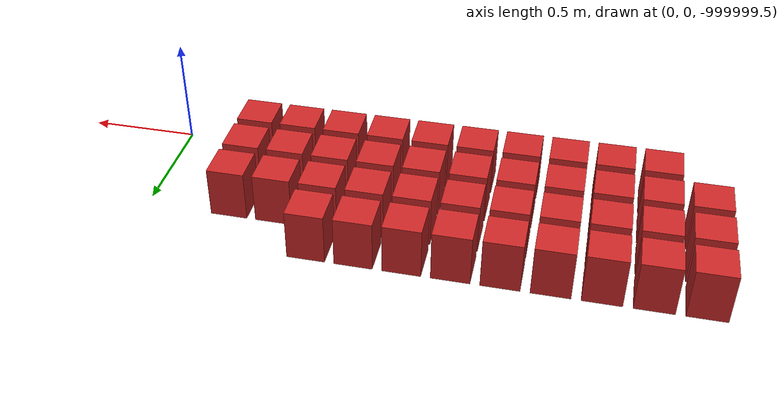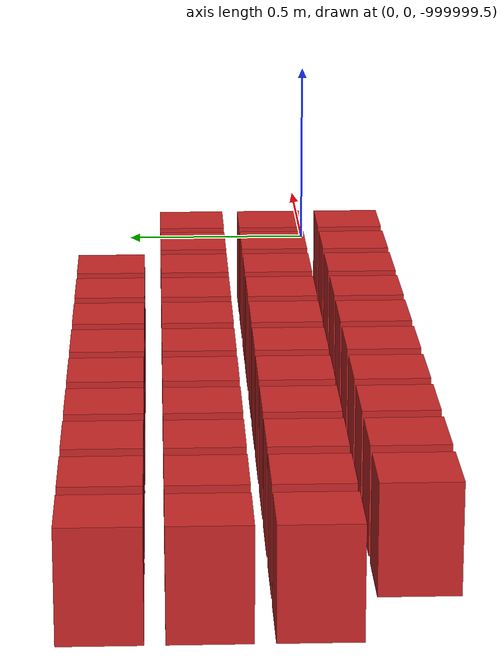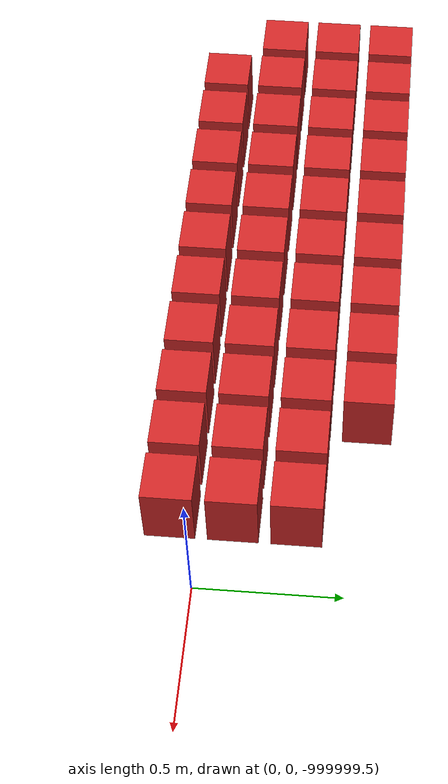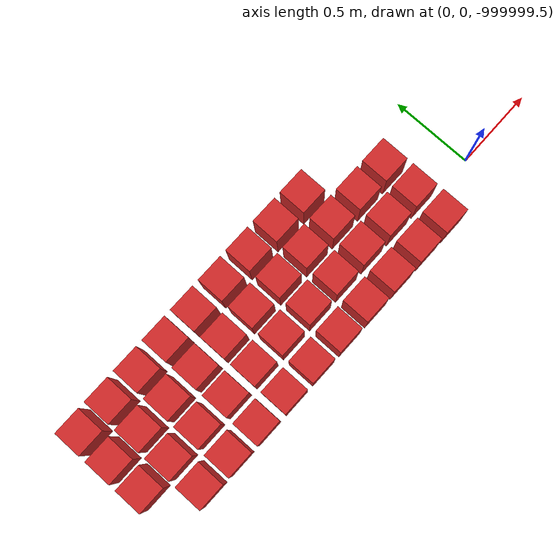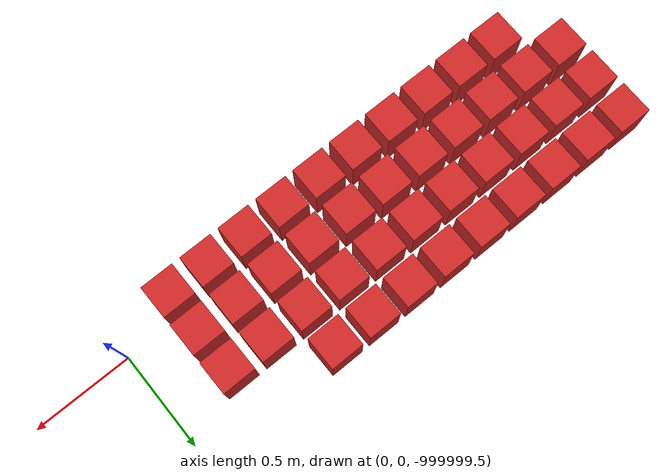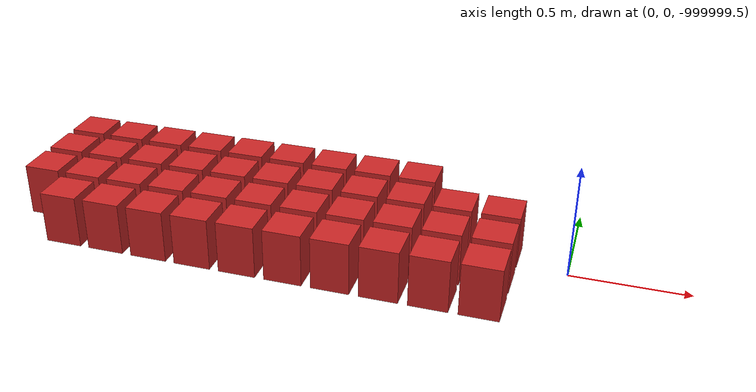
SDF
<sdf version="1.7">
 <world name="default">
  <model name="ground_plane">
   <static>1</static>
   <link name="link">
    <collision name="collision">
     <geometry><plane><normal>0 0 1</normal><size>100 100</size></plane></geometry>
     <surface>
      <contact><collide_bitmask>65535</collide_bitmask></contact>
      <friction><ode><mu>100</mu><mu2>50</mu2></ode></friction>
     </surface>
    </collision>
    <visual name="visual">
     <cast_shadows>0</cast_shadows>
     <geometry><plane><normal>0 0 1</normal><size>100 100</size></plane></geometry>
     <material>
      <script><uri>file://media/materials/scripts/gazebo.material</uri><name>Gazebo/Grey</name></script>
     </material>
    </visual>
   </link>
  </model>
  <model name="wall_254">
   <link name="link">
    <pose>0 0 0.5 0 -0 0</pose>
    <inertial>
     <mass>0.5167</mass>
     <inertia>
      <ixx>0.000861167</ixx>
      <ixy>0</ixy>
      <ixz>0</ixz>
      <iyy>0.000861167</iyy>
      <iyz>0</iyz>
      <izz>0.000861167</izz>
     </inertia>
    </inertial>
    <collision name="collision">
     <geometry><box><size>0.21 0.21 0.25</size></box></geometry>
     <surface>
      <contact>
       <poissons_ratio>0.347</poissons_ratio>
       <elastic_modulus>8.8e+09</elastic_modulus>
       <ode><kp>100000</kp><kd>100</kd><max_vel>100</max_vel><min_depth>0.001</min_depth></ode>
      </contact>
      <friction>
       <torsional>
        <coefficient>1</coefficient>
        <use_patch_radius>0</use_patch_radius>
        <surface_radius>0.01</surface_radius>
       </torsional>
      </friction>
     </surface>
    </collision>
    <visual name="visual">
     <geometry><box><size>0.175 0.175 0.25</size></box></geometry>
     <material>
      <script><uri>file://media/materials/scripts/gazebo.material</uri><name>Gazebo/Red</name></script>
     </material>
    </visual>
   </link>
   <pose>-2.28261 -0.108696 -1e+06 0 -0 0</pose>
  </model>
  <model name="wall_255">
   <link name="link">
    <pose>0 0 0.5 0 -0 0</pose>
    <inertial>
     <mass>0.5167</mass>
     <inertia>
      <ixx>0.000861167</ixx>
      <ixy>0</ixy>
      <ixz>0</ixz>
      <iyy>0.000861167</iyy>
      <iyz>0</iyz>
      <izz>0.000861167</izz>
     </inertia>
    </inertial>
    <collision name="collision">
     <geometry><box><size>0.21 0.21 0.25</size></box></geometry>
     <surface>
      <contact>
       <poissons_ratio>0.347</poissons_ratio>
       <elastic_modulus>8.8e+09</elastic_modulus>
       <ode><kp>100000</kp><kd>100</kd><max_vel>100</max_vel><min_depth>0.001</min_depth></ode>
      </contact>
      <friction>
       <torsional>
        <coefficient>1</coefficient>
        <use_patch_radius>0</use_patch_radius>
        <surface_radius>0.01</surface_radius>
       </torsional>
      </friction>
     </surface>
    </collision>
    <visual name="visual">
     <geometry><box><size>0.175 0.175 0.25</size></box></geometry>
     <material>
      <script><uri>file://media/materials/scripts/gazebo.material</uri><name>Gazebo/Red</name></script>
     </material>
    </visual>
   </link>
   <pose>-2.06522 -0.108696 -1e+06 0 -0 0</pose>
  </model>
  <model name="wall_256">
   <link name="link">
    <pose>0 0 0.5 0 -0 0</pose>
    <inertial>
     <mass>0.5167</mass>
     <inertia>
      <ixx>0.000861167</ixx>
      <ixy>0</ixy>
      <ixz>0</ixz>
      <iyy>0.000861167</iyy>
      <iyz>0</iyz>
      <izz>0.000861167</izz>
     </inertia>
    </inertial>
    <collision name="collision">
     <geometry><box><size>0.21 0.21 0.25</size></box></geometry>
     <surface>
      <contact>
       <poissons_ratio>0.347</poissons_ratio>
       <elastic_modulus>8.8e+09</elastic_modulus>
       <ode><kp>100000</kp><kd>100</kd><max_vel>100</max_vel><min_depth>0.001</min_depth></ode>
      </contact>
      <friction>
       <torsional>
        <coefficient>1</coefficient>
        <use_patch_radius>0</use_patch_radius>
        <surface_radius>0.01</surface_radius>
       </torsional>
      </friction>
     </surface>
    </collision>
    <visual name="visual">
     <geometry><box><size>0.175 0.175 0.25</size></box></geometry>
     <material>
      <script><uri>file://media/materials/scripts/gazebo.material</uri><name>Gazebo/Red</name></script>
     </material>
    </visual>
   </link>
   <pose>-1.84783 -0.108696 -1e+06 0 -0 0</pose>
  </model>
  <model name="wall_257">
   <link name="link">
    <pose>0 0 0.5 0 -0 0</pose>
    <inertial>
     <mass>0.5167</mass>
     <inertia>
      <ixx>0.000861167</ixx>
      <ixy>0</ixy>
      <ixz>0</ixz>
      <iyy>0.000861167</iyy>
      <iyz>0</iyz>
      <izz>0.000861167</izz>
     </inertia>
    </inertial>
    <collision name="collision">
     <geometry><box><size>0.21 0.21 0.25</size></box></geometry>
     <surface>
      <contact>
       <poissons_ratio>0.347</poissons_ratio>
       <elastic_modulus>8.8e+09</elastic_modulus>
       <ode><kp>100000</kp><kd>100</kd><max_vel>100</max_vel><min_depth>0.001</min_depth></ode>
      </contact>
      <friction>
       <torsional>
        <coefficient>1</coefficient>
        <use_patch_radius>0</use_patch_radius>
        <surface_radius>0.01</surface_radius>
       </torsional>
      </friction>
     </surface>
    </collision>
    <visual name="visual">
     <geometry><box><size>0.175 0.175 0.25</size></box></geometry>
     <material>
      <script><uri>file://media/materials/scripts/gazebo.material</uri><name>Gazebo/Red</name></script>
     </material>
    </visual>
   </link>
   <pose>-1.63043 -0.108696 -1e+06 0 -0 0</pose>
  </model>
  <model name="wall_258">
   <link name="link">
    <pose>0 0 0.5 0 -0 0</pose>
    <inertial>
     <mass>0.5167</mass>
     <inertia>
      <ixx>0.000861167</ixx>
      <ixy>0</ixy>
      <ixz>0</ixz>
      <iyy>0.000861167</iyy>
      <iyz>0</iyz>
      <izz>0.000861167</izz>
     </inertia>
    </inertial>
    <collision name="collision">
     <geometry><box><size>0.21 0.21 0.25</size></box></geometry>
     <surface>
      <contact>
       <poissons_ratio>0.347</poissons_ratio>
       <elastic_modulus>8.8e+09</elastic_modulus>
       <ode><kp>100000</kp><kd>100</kd><max_vel>100</max_vel><min_depth>0.001</min_depth></ode>
      </contact>
      <friction>
       <torsional>
        <coefficient>1</coefficient>
        <use_patch_radius>0</use_patch_radius>
        <surface_radius>0.01</surface_radius>
       </torsional>
      </friction>
     </surface>
    </collision>
    <visual name="visual">
     <geometry><box><size>0.175 0.175 0.25</size></box></geometry>
     <material>
      <script><uri>file://media/materials/scripts/gazebo.material</uri><name>Gazebo/Red</name></script>
     </material>
    </visual>
   </link>
   <pose>-1.41304 -0.108696 -1e+06 0 -0 0</pose>
  </model>
  <model name="wall_259">
   <link name="link">
    <pose>0 0 0.5 0 -0 0</pose>
    <inertial>
     <mass>0.5167</mass>
     <inertia>
      <ixx>0.000861167</ixx>
      <ixy>0</ixy>
      <ixz>0</ixz>
      <iyy>0.000861167</iyy>
      <iyz>0</iyz>
      <izz>0.000861167</izz>
     </inertia>
    </inertial>
    <collision name="collision">
     <geometry><box><size>0.21 0.21 0.25</size></box></geometry>
     <surface>
      <contact>
       <poissons_ratio>0.347</poissons_ratio>
       <elastic_modulus>8.8e+09</elastic_modulus>
       <ode><kp>100000</kp><kd>100</kd><max_vel>100</max_vel><min_depth>0.001</min_depth></ode>
      </contact>
      <friction>
       <torsional>
        <coefficient>1</coefficient>
        <use_patch_radius>0</use_patch_radius>
        <surface_radius>0.01</surface_radius>
       </torsional>
      </friction>
     </surface>
    </collision>
    <visual name="visual">
     <geometry><box><size>0.175 0.175 0.25</size></box></geometry>
     <material>
      <script><uri>file://media/materials/scripts/gazebo.material</uri><name>Gazebo/Red</name></script>
     </material>
    </visual>
   </link>
   <pose>-1.19565 -0.108696 -1e+06 0 -0 0</pose>
  </model>
  <model name="wall_260">
   <link name="link">
    <pose>0 0 0.5 0 -0 0</pose>
    <inertial>
     <mass>0.5167</mass>
     <inertia>
      <ixx>0.000861167</ixx>
      <ixy>0</ixy>
      <ixz>0</ixz>
      <iyy>0.000861167</iyy>
      <iyz>0</iyz>
      <izz>0.000861167</izz>
     </inertia>
    </inertial>
    <collision name="collision">
     <geometry><box><size>0.21 0.21 0.25</size></box></geometry>
     <surface>
      <contact>
       <poissons_ratio>0.347</poissons_ratio>
       <elastic_modulus>8.8e+09</elastic_modulus>
       <ode><kp>100000</kp><kd>100</kd><max_vel>100</max_vel><min_depth>0.001</min_depth></ode>
      </contact>
      <friction>
       <torsional>
        <coefficient>1</coefficient>
        <use_patch_radius>0</use_patch_radius>
        <surface_radius>0.01</surface_radius>
       </torsional>
      </friction>
     </surface>
    </collision>
    <visual name="visual">
     <geometry><box><size>0.175 0.175 0.25</size></box></geometry>
     <material>
      <script><uri>file://media/materials/scripts/gazebo.material</uri><name>Gazebo/Red</name></script>
     </material>
    </visual>
   </link>
   <pose>-0.978261 -0.108696 -1e+06 0 -0 0</pose>
  </model>
  <model name="wall_261">
   <link name="link">
    <pose>0 0 0.5 0 -0 0</pose>
    <inertial>
     <mass>0.5167</mass>
     <inertia>
      <ixx>0.000861167</ixx>
      <ixy>0</ixy>
      <ixz>0</ixz>
      <iyy>0.000861167</iyy>
      <iyz>0</iyz>
      <izz>0.000861167</izz>
     </inertia>
    </inertial>
    <collision name="collision">
     <geometry><box><size>0.21 0.21 0.25</size></box></geometry>
     <surface>
      <contact>
       <poissons_ratio>0.347</poissons_ratio>
       <elastic_modulus>8.8e+09</elastic_modulus>
       <ode><kp>100000</kp><kd>100</kd><max_vel>100</max_vel><min_depth>0.001</min_depth></ode>
      </contact>
      <friction>
       <torsional>
        <coefficient>1</coefficient>
        <use_patch_radius>0</use_patch_radius>
        <surface_radius>0.01</surface_radius>
       </torsional>
      </friction>
     </surface>
    </collision>
    <visual name="visual">
     <geometry><box><size>0.175 0.175 0.25</size></box></geometry>
     <material>
      <script><uri>file://media/materials/scripts/gazebo.material</uri><name>Gazebo/Red</name></script>
     </material>
    </visual>
   </link>
   <pose>-0.76087 -0.108696 -1e+06 0 -0 0</pose>
  </model>
  <model name="wall_262">
   <link name="link">
    <pose>0 0 0.5 0 -0 0</pose>
    <inertial>
     <mass>0.5167</mass>
     <inertia>
      <ixx>0.000861167</ixx>
      <ixy>0</ixy>
      <ixz>0</ixz>
      <iyy>0.000861167</iyy>
      <iyz>0</iyz>
      <izz>0.000861167</izz>
     </inertia>
    </inertial>
    <collision name="collision">
     <geometry><box><size>0.21 0.21 0.25</size></box></geometry>
     <surface>
      <contact>
       <poissons_ratio>0.347</poissons_ratio>
       <elastic_modulus>8.8e+09</elastic_modulus>
       <ode><kp>100000</kp><kd>100</kd><max_vel>100</max_vel><min_depth>0.001</min_depth></ode>
      </contact>
      <friction>
       <torsional>
        <coefficient>1</coefficient>
        <use_patch_radius>0</use_patch_radius>
        <surface_radius>0.01</surface_radius>
       </torsional>
      </friction>
     </surface>
    </collision>
    <visual name="visual">
     <geometry><box><size>0.175 0.175 0.25</size></box></geometry>
     <material>
      <script><uri>file://media/materials/scripts/gazebo.material</uri><name>Gazebo/Red</name></script>
     </material>
    </visual>
   </link>
   <pose>-0.543478 -0.108696 -1e+06 0 -0 0</pose>
  </model>
  <model name="wall_263">
   <link name="link">
    <pose>0 0 0.5 0 -0 0</pose>
    <inertial>
     <mass>0.5167</mass>
     <inertia>
      <ixx>0.000861167</ixx>
      <ixy>0</ixy>
      <ixz>0</ixz>
      <iyy>0.000861167</iyy>
      <iyz>0</iyz>
      <izz>0.000861167</izz>
     </inertia>
    </inertial>
    <collision name="collision">
     <geometry><box><size>0.21 0.21 0.25</size></box></geometry>
     <surface>
      <contact>
       <poissons_ratio>0.347</poissons_ratio>
       <elastic_modulus>8.8e+09</elastic_modulus>
       <ode><kp>100000</kp><kd>100</kd><max_vel>100</max_vel><min_depth>0.001</min_depth></ode>
      </contact>
      <friction>
       <torsional>
        <coefficient>1</coefficient>
        <use_patch_radius>0</use_patch_radius>
        <surface_radius>0.01</surface_radius>
       </torsional>
      </friction>
     </surface>
    </collision>
    <visual name="visual">
     <geometry><box><size>0.175 0.175 0.25</size></box></geometry>
     <material>
      <script><uri>file://media/materials/scripts/gazebo.material</uri><name>Gazebo/Red</name></script>
     </material>
    </visual>
   </link>
   <pose>-0.326087 -0.108696 -1e+06 0 -0 0</pose>
  </model>
  <model name="wall_276">
   <link name="link">
    <pose>0 0 0.5 0 -0 0</pose>
    <inertial>
     <mass>0.5167</mass>
     <inertia>
      <ixx>0.000861167</ixx>
      <ixy>0</ixy>
      <ixz>0</ixz>
      <iyy>0.000861167</iyy>
      <iyz>0</iyz>
      <izz>0.000861167</izz>
     </inertia>
    </inertial>
    <collision name="collision">
     <geometry><box><size>0.21 0.21 0.25</size></box></geometry>
     <surface>
      <contact>
       <poissons_ratio>0.347</poissons_ratio>
       <elastic_modulus>8.8e+09</elastic_modulus>
       <ode><kp>100000</kp><kd>100</kd><max_vel>100</max_vel><min_depth>0.001</min_depth></ode>
      </contact>
      <friction>
       <torsional>
        <coefficient>1</coefficient>
        <use_patch_radius>0</use_patch_radius>
        <surface_radius>0.01</surface_radius>
       </torsional>
      </friction>
     </surface>
    </collision>
    <visual name="visual">
     <geometry><box><size>0.175 0.175 0.25</size></box></geometry>
     <material>
      <script><uri>file://media/materials/scripts/gazebo.material</uri><name>Gazebo/Red</name></script>
     </material>
    </visual>
   </link>
   <pose>-2.5 0.108696 -1e+06 0 -0 0</pose>
  </model>
  <model name="wall_277">
   <link name="link">
    <pose>0 0 0.5 0 -0 0</pose>
    <inertial>
     <mass>0.5167</mass>
     <inertia>
      <ixx>0.000861167</ixx>
      <ixy>0</ixy>
      <ixz>0</ixz>
      <iyy>0.000861167</iyy>
      <iyz>0</iyz>
      <izz>0.000861167</izz>
     </inertia>
    </inertial>
    <collision name="collision">
     <geometry><box><size>0.21 0.21 0.25</size></box></geometry>
     <surface>
      <contact>
       <poissons_ratio>0.347</poissons_ratio>
       <elastic_modulus>8.8e+09</elastic_modulus>
       <ode><kp>100000</kp><kd>100</kd><max_vel>100</max_vel><min_depth>0.001</min_depth></ode>
      </contact>
      <friction>
       <torsional>
        <coefficient>1</coefficient>
        <use_patch_radius>0</use_patch_radius>
        <surface_radius>0.01</surface_radius>
       </torsional>
      </friction>
     </surface>
    </collision>
    <visual name="visual">
     <geometry><box><size>0.175 0.175 0.25</size></box></geometry>
     <material>
      <script><uri>file://media/materials/scripts/gazebo.material</uri><name>Gazebo/Red</name></script>
     </material>
    </visual>
   </link>
   <pose>-2.28261 0.108696 -1e+06 0 -0 0</pose>
  </model>
  <model name="wall_278">
   <link name="link">
    <pose>0 0 0.5 0 -0 0</pose>
    <inertial>
     <mass>0.5167</mass>
     <inertia>
      <ixx>0.000861167</ixx>
      <ixy>0</ixy>
      <ixz>0</ixz>
      <iyy>0.000861167</iyy>
      <iyz>0</iyz>
      <izz>0.000861167</izz>
     </inertia>
    </inertial>
    <collision name="collision">
     <geometry><box><size>0.21 0.21 0.25</size></box></geometry>
     <surface>
      <contact>
       <poissons_ratio>0.347</poissons_ratio>
       <elastic_modulus>8.8e+09</elastic_modulus>
       <ode><kp>100000</kp><kd>100</kd><max_vel>100</max_vel><min_depth>0.001</min_depth></ode>
      </contact>
      <friction>
       <torsional>
        <coefficient>1</coefficient>
        <use_patch_radius>0</use_patch_radius>
        <surface_radius>0.01</surface_radius>
       </torsional>
      </friction>
     </surface>
    </collision>
    <visual name="visual">
     <geometry><box><size>0.175 0.175 0.25</size></box></geometry>
     <material>
      <script><uri>file://media/materials/scripts/gazebo.material</uri><name>Gazebo/Red</name></script>
     </material>
    </visual>
   </link>
   <pose>-2.06522 0.108696 -1e+06 0 -0 0</pose>
  </model>
  <model name="wall_279">
   <link name="link">
    <pose>0 0 0.5 0 -0 0</pose>
    <inertial>
     <mass>0.5167</mass>
     <inertia>
      <ixx>0.000861167</ixx>
      <ixy>0</ixy>
      <ixz>0</ixz>
      <iyy>0.000861167</iyy>
      <iyz>0</iyz>
      <izz>0.000861167</izz>
     </inertia>
    </inertial>
    <collision name="collision">
     <geometry><box><size>0.21 0.21 0.25</size></box></geometry>
     <surface>
      <contact>
       <poissons_ratio>0.347</poissons_ratio>
       <elastic_modulus>8.8e+09</elastic_modulus>
       <ode><kp>100000</kp><kd>100</kd><max_vel>100</max_vel><min_depth>0.001</min_depth></ode>
      </contact>
      <friction>
       <torsional>
        <coefficient>1</coefficient>
        <use_patch_radius>0</use_patch_radius>
        <surface_radius>0.01</surface_radius>
       </torsional>
      </friction>
     </surface>
    </collision>
    <visual name="visual">
     <geometry><box><size>0.175 0.175 0.25</size></box></geometry>
     <material>
      <script><uri>file://media/materials/scripts/gazebo.material</uri><name>Gazebo/Red</name></script>
     </material>
    </visual>
   </link>
   <pose>-1.84783 0.108696 -1e+06 0 -0 0</pose>
  </model>
  <model name="wall_280">
   <link name="link">
    <pose>0 0 0.5 0 -0 0</pose>
    <inertial>
     <mass>0.5167</mass>
     <inertia>
      <ixx>0.000861167</ixx>
      <ixy>0</ixy>
      <ixz>0</ixz>
      <iyy>0.000861167</iyy>
      <iyz>0</iyz>
      <izz>0.000861167</izz>
     </inertia>
    </inertial>
    <collision name="collision">
     <geometry><box><size>0.21 0.21 0.25</size></box></geometry>
     <surface>
      <contact>
       <poissons_ratio>0.347</poissons_ratio>
       <elastic_modulus>8.8e+09</elastic_modulus>
       <ode><kp>100000</kp><kd>100</kd><max_vel>100</max_vel><min_depth>0.001</min_depth></ode>
      </contact>
      <friction>
       <torsional>
        <coefficient>1</coefficient>
        <use_patch_radius>0</use_patch_radius>
        <surface_radius>0.01</surface_radius>
       </torsional>
      </friction>
     </surface>
    </collision>
    <visual name="visual">
     <geometry><box><size>0.175 0.175 0.25</size></box></geometry>
     <material>
      <script><uri>file://media/materials/scripts/gazebo.material</uri><name>Gazebo/Red</name></script>
     </material>
    </visual>
   </link>
   <pose>-1.63043 0.108696 -1e+06 0 -0 0</pose>
  </model>
  <model name="wall_281">
   <link name="link">
    <pose>0 0 0.5 0 -0 0</pose>
    <inertial>
     <mass>0.5167</mass>
     <inertia>
      <ixx>0.000861167</ixx>
      <ixy>0</ixy>
      <ixz>0</ixz>
      <iyy>0.000861167</iyy>
      <iyz>0</iyz>
      <izz>0.000861167</izz>
     </inertia>
    </inertial>
    <collision name="collision">
     <geometry><box><size>0.21 0.21 0.25</size></box></geometry>
     <surface>
      <contact>
       <poissons_ratio>0.347</poissons_ratio>
       <elastic_modulus>8.8e+09</elastic_modulus>
       <ode><kp>100000</kp><kd>100</kd><max_vel>100</max_vel><min_depth>0.001</min_depth></ode>
      </contact>
      <friction>
       <torsional>
        <coefficient>1</coefficient>
        <use_patch_radius>0</use_patch_radius>
        <surface_radius>0.01</surface_radius>
       </torsional>
      </friction>
     </surface>
    </collision>
    <visual name="visual">
     <geometry><box><size>0.175 0.175 0.25</size></box></geometry>
     <material>
      <script><uri>file://media/materials/scripts/gazebo.material</uri><name>Gazebo/Red</name></script>
     </material>
    </visual>
   </link>
   <pose>-1.41304 0.108696 -1e+06 0 -0 0</pose>
  </model>
  <model name="wall_282">
   <link name="link">
    <pose>0 0 0.5 0 -0 0</pose>
    <inertial>
     <mass>0.5167</mass>
     <inertia>
      <ixx>0.000861167</ixx>
      <ixy>0</ixy>
      <ixz>0</ixz>
      <iyy>0.000861167</iyy>
      <iyz>0</iyz>
      <izz>0.000861167</izz>
     </inertia>
    </inertial>
    <collision name="collision">
     <geometry><box><size>0.21 0.21 0.25</size></box></geometry>
     <surface>
      <contact>
       <poissons_ratio>0.347</poissons_ratio>
       <elastic_modulus>8.8e+09</elastic_modulus>
       <ode><kp>100000</kp><kd>100</kd><max_vel>100</max_vel><min_depth>0.001</min_depth></ode>
      </contact>
      <friction>
       <torsional>
        <coefficient>1</coefficient>
        <use_patch_radius>0</use_patch_radius>
        <surface_radius>0.01</surface_radius>
       </torsional>
      </friction>
     </surface>
    </collision>
    <visual name="visual">
     <geometry><box><size>0.175 0.175 0.25</size></box></geometry>
     <material>
      <script><uri>file://media/materials/scripts/gazebo.material</uri><name>Gazebo/Red</name></script>
     </material>
    </visual>
   </link>
   <pose>-1.19565 0.108696 -1e+06 0 -0 0</pose>
  </model>
  <model name="wall_283">
   <link name="link">
    <pose>0 0 0.5 0 -0 0</pose>
    <inertial>
     <mass>0.5167</mass>
     <inertia>
      <ixx>0.000861167</ixx>
      <ixy>0</ixy>
      <ixz>0</ixz>
      <iyy>0.000861167</iyy>
      <iyz>0</iyz>
      <izz>0.000861167</izz>
     </inertia>
    </inertial>
    <collision name="collision">
     <geometry><box><size>0.21 0.21 0.25</size></box></geometry>
     <surface>
      <contact>
       <poissons_ratio>0.347</poissons_ratio>
       <elastic_modulus>8.8e+09</elastic_modulus>
       <ode><kp>100000</kp><kd>100</kd><max_vel>100</max_vel><min_depth>0.001</min_depth></ode>
      </contact>
      <friction>
       <torsional>
        <coefficient>1</coefficient>
        <use_patch_radius>0</use_patch_radius>
        <surface_radius>0.01</surface_radius>
       </torsional>
      </friction>
     </surface>
    </collision>
    <visual name="visual">
     <geometry><box><size>0.175 0.175 0.25</size></box></geometry>
     <material>
      <script><uri>file://media/materials/scripts/gazebo.material</uri><name>Gazebo/Red</name></script>
     </material>
    </visual>
   </link>
   <pose>-0.978261 0.108696 -1e+06 0 -0 0</pose>
  </model>
  <model name="wall_284">
   <link name="link">
    <pose>0 0 0.5 0 -0 0</pose>
    <inertial>
     <mass>0.5167</mass>
     <inertia>
      <ixx>0.000861167</ixx>
      <ixy>0</ixy>
      <ixz>0</ixz>
      <iyy>0.000861167</iyy>
      <iyz>0</iyz>
      <izz>0.000861167</izz>
     </inertia>
    </inertial>
    <collision name="collision">
     <geometry><box><size>0.21 0.21 0.25</size></box></geometry>
     <surface>
      <contact>
       <poissons_ratio>0.347</poissons_ratio>
       <elastic_modulus>8.8e+09</elastic_modulus>
       <ode><kp>100000</kp><kd>100</kd><max_vel>100</max_vel><min_depth>0.001</min_depth></ode>
      </contact>
      <friction>
       <torsional>
        <coefficient>1</coefficient>
        <use_patch_radius>0</use_patch_radius>
        <surface_radius>0.01</surface_radius>
       </torsional>
      </friction>
     </surface>
    </collision>
    <visual name="visual">
     <geometry><box><size>0.175 0.175 0.25</size></box></geometry>
     <material>
      <script><uri>file://media/materials/scripts/gazebo.material</uri><name>Gazebo/Red</name></script>
     </material>
    </visual>
   </link>
   <pose>-0.76087 0.108696 -1e+06 0 -0 0</pose>
  </model>
  <model name="wall_285">
   <link name="link">
    <pose>0 0 0.5 0 -0 0</pose>
    <inertial>
     <mass>0.5167</mass>
     <inertia>
      <ixx>0.000861167</ixx>
      <ixy>0</ixy>
      <ixz>0</ixz>
      <iyy>0.000861167</iyy>
      <iyz>0</iyz>
      <izz>0.000861167</izz>
     </inertia>
    </inertial>
    <collision name="collision">
     <geometry><box><size>0.21 0.21 0.25</size></box></geometry>
     <surface>
      <contact>
       <poissons_ratio>0.347</poissons_ratio>
       <elastic_modulus>8.8e+09</elastic_modulus>
       <ode><kp>100000</kp><kd>100</kd><max_vel>100</max_vel><min_depth>0.001</min_depth></ode>
      </contact>
      <friction>
       <torsional>
        <coefficient>1</coefficient>
        <use_patch_radius>0</use_patch_radius>
        <surface_radius>0.01</surface_radius>
       </torsional>
      </friction>
     </surface>
    </collision>
    <visual name="visual">
     <geometry><box><size>0.175 0.175 0.25</size></box></geometry>
     <material>
      <script><uri>file://media/materials/scripts/gazebo.material</uri><name>Gazebo/Red</name></script>
     </material>
    </visual>
   </link>
   <pose>-0.543478 0.108696 -1e+06 0 -0 0</pose>
  </model>
  <model name="wall_286">
   <link name="link">
    <pose>0 0 0.5 0 -0 0</pose>
    <inertial>
     <mass>0.5167</mass>
     <inertia>
      <ixx>0.000861167</ixx>
      <ixy>0</ixy>
      <ixz>0</ixz>
      <iyy>0.000861167</iyy>
      <iyz>0</iyz>
      <izz>0.000861167</izz>
     </inertia>
    </inertial>
    <collision name="collision">
     <geometry><box><size>0.21 0.21 0.25</size></box></geometry>
     <surface>
      <contact>
       <poissons_ratio>0.347</poissons_ratio>
       <elastic_modulus>8.8e+09</elastic_modulus>
       <ode><kp>100000</kp><kd>100</kd><max_vel>100</max_vel><min_depth>0.001</min_depth></ode>
      </contact>
      <friction>
       <torsional>
        <coefficient>1</coefficient>
        <use_patch_radius>0</use_patch_radius>
        <surface_radius>0.01</surface_radius>
       </torsional>
      </friction>
     </surface>
    </collision>
    <visual name="visual">
     <geometry><box><size>0.175 0.175 0.25</size></box></geometry>
     <material>
      <script><uri>file://media/materials/scripts/gazebo.material</uri><name>Gazebo/Red</name></script>
     </material>
    </visual>
   </link>
   <pose>-0.326087 0.108696 -1e+06 0 -0 0</pose>
  </model>
  <model name="wall_299">
   <link name="link">
    <pose>0 0 0.5 0 -0 0</pose>
    <inertial>
     <mass>0.5167</mass>
     <inertia>
      <ixx>0.000861167</ixx>
      <ixy>0</ixy>
      <ixz>0</ixz>
      <iyy>0.000861167</iyy>
      <iyz>0</iyz>
      <izz>0.000861167</izz>
     </inertia>
    </inertial>
    <collision name="collision">
     <geometry><box><size>0.21 0.21 0.25</size></box></geometry>
     <surface>
      <contact>
       <poissons_ratio>0.347</poissons_ratio>
       <elastic_modulus>8.8e+09</elastic_modulus>
       <ode><kp>100000</kp><kd>100</kd><max_vel>100</max_vel><min_depth>0.001</min_depth></ode>
      </contact>
      <friction>
       <torsional>
        <coefficient>1</coefficient>
        <use_patch_radius>0</use_patch_radius>
        <surface_radius>0.01</surface_radius>
       </torsional>
      </friction>
     </surface>
    </collision>
    <visual name="visual">
     <geometry><box><size>0.175 0.175 0.25</size></box></geometry>
     <material>
      <script><uri>file://media/materials/scripts/gazebo.material</uri><name>Gazebo/Red</name></script>
     </material>
    </visual>
   </link>
   <pose>-2.5 0.326087 -1e+06 0 -0 0</pose>
  </model>
  <model name="wall_300">
   <link name="link">
    <pose>0 0 0.5 0 -0 0</pose>
    <inertial>
     <mass>0.5167</mass>
     <inertia>
      <ixx>0.000861167</ixx>
      <ixy>0</ixy>
      <ixz>0</ixz>
      <iyy>0.000861167</iyy>
      <iyz>0</iyz>
      <izz>0.000861167</izz>
     </inertia>
    </inertial>
    <collision name="collision">
     <geometry><box><size>0.21 0.21 0.25</size></box></geometry>
     <surface>
      <contact>
       <poissons_ratio>0.347</poissons_ratio>
       <elastic_modulus>8.8e+09</elastic_modulus>
       <ode><kp>100000</kp><kd>100</kd><max_vel>100</max_vel><min_depth>0.001</min_depth></ode>
      </contact>
      <friction>
       <torsional>
        <coefficient>1</coefficient>
        <use_patch_radius>0</use_patch_radius>
        <surface_radius>0.01</surface_radius>
       </torsional>
      </friction>
     </surface>
    </collision>
    <visual name="visual">
     <geometry><box><size>0.175 0.175 0.25</size></box></geometry>
     <material>
      <script><uri>file://media/materials/scripts/gazebo.material</uri><name>Gazebo/Red</name></script>
     </material>
    </visual>
   </link>
   <pose>-2.28261 0.326087 -1e+06 0 -0 0</pose>
  </model>
  <model name="wall_301">
   <link name="link">
    <pose>0 0 0.5 0 -0 0</pose>
    <inertial>
     <mass>0.5167</mass>
     <inertia>
      <ixx>0.000861167</ixx>
      <ixy>0</ixy>
      <ixz>0</ixz>
      <iyy>0.000861167</iyy>
      <iyz>0</iyz>
      <izz>0.000861167</izz>
     </inertia>
    </inertial>
    <collision name="collision">
     <geometry><box><size>0.21 0.21 0.25</size></box></geometry>
     <surface>
      <contact>
       <poissons_ratio>0.347</poissons_ratio>
       <elastic_modulus>8.8e+09</elastic_modulus>
       <ode><kp>100000</kp><kd>100</kd><max_vel>100</max_vel><min_depth>0.001</min_depth></ode>
      </contact>
      <friction>
       <torsional>
        <coefficient>1</coefficient>
        <use_patch_radius>0</use_patch_radius>
        <surface_radius>0.01</surface_radius>
       </torsional>
      </friction>
     </surface>
    </collision>
    <visual name="visual">
     <geometry><box><size>0.175 0.175 0.25</size></box></geometry>
     <material>
      <script><uri>file://media/materials/scripts/gazebo.material</uri><name>Gazebo/Red</name></script>
     </material>
    </visual>
   </link>
   <pose>-2.06522 0.326087 -1e+06 0 -0 0</pose>
  </model>
  <model name="wall_302">
   <link name="link">
    <pose>0 0 0.5 0 -0 0</pose>
    <inertial>
     <mass>0.5167</mass>
     <inertia>
      <ixx>0.000861167</ixx>
      <ixy>0</ixy>
      <ixz>0</ixz>
      <iyy>0.000861167</iyy>
      <iyz>0</iyz>
      <izz>0.000861167</izz>
     </inertia>
    </inertial>
    <collision name="collision">
     <geometry><box><size>0.21 0.21 0.25</size></box></geometry>
     <surface>
      <contact>
       <poissons_ratio>0.347</poissons_ratio>
       <elastic_modulus>8.8e+09</elastic_modulus>
       <ode><kp>100000</kp><kd>100</kd><max_vel>100</max_vel><min_depth>0.001</min_depth></ode>
      </contact>
      <friction>
       <torsional>
        <coefficient>1</coefficient>
        <use_patch_radius>0</use_patch_radius>
        <surface_radius>0.01</surface_radius>
       </torsional>
      </friction>
     </surface>
    </collision>
    <visual name="visual">
     <geometry><box><size>0.175 0.175 0.25</size></box></geometry>
     <material>
      <script><uri>file://media/materials/scripts/gazebo.material</uri><name>Gazebo/Red</name></script>
     </material>
    </visual>
   </link>
   <pose>-1.84783 0.326087 -1e+06 0 -0 0</pose>
  </model>
  <model name="wall_303">
   <link name="link">
    <pose>0 0 0.5 0 -0 0</pose>
    <inertial>
     <mass>0.5167</mass>
     <inertia>
      <ixx>0.000861167</ixx>
      <ixy>0</ixy>
      <ixz>0</ixz>
      <iyy>0.000861167</iyy>
      <iyz>0</iyz>
      <izz>0.000861167</izz>
     </inertia>
    </inertial>
    <collision name="collision">
     <geometry><box><size>0.21 0.21 0.25</size></box></geometry>
     <surface>
      <contact>
       <poissons_ratio>0.347</poissons_ratio>
       <elastic_modulus>8.8e+09</elastic_modulus>
       <ode><kp>100000</kp><kd>100</kd><max_vel>100</max_vel><min_depth>0.001</min_depth></ode>
      </contact>
      <friction>
       <torsional>
        <coefficient>1</coefficient>
        <use_patch_radius>0</use_patch_radius>
        <surface_radius>0.01</surface_radius>
       </torsional>
      </friction>
     </surface>
    </collision>
    <visual name="visual">
     <geometry><box><size>0.175 0.175 0.25</size></box></geometry>
     <material>
      <script><uri>file://media/materials/scripts/gazebo.material</uri><name>Gazebo/Red</name></script>
     </material>
    </visual>
   </link>
   <pose>-1.63043 0.326087 -1e+06 0 -0 0</pose>
  </model>
  <model name="wall_304">
   <link name="link">
    <pose>0 0 0.5 0 -0 0</pose>
    <inertial>
     <mass>0.5167</mass>
     <inertia>
      <ixx>0.000861167</ixx>
      <ixy>0</ixy>
      <ixz>0</ixz>
      <iyy>0.000861167</iyy>
      <iyz>0</iyz>
      <izz>0.000861167</izz>
     </inertia>
    </inertial>
    <collision name="collision">
     <geometry><box><size>0.21 0.21 0.25</size></box></geometry>
     <surface>
      <contact>
       <poissons_ratio>0.347</poissons_ratio>
       <elastic_modulus>8.8e+09</elastic_modulus>
       <ode><kp>100000</kp><kd>100</kd><max_vel>100</max_vel><min_depth>0.001</min_depth></ode>
      </contact>
      <friction>
       <torsional>
        <coefficient>1</coefficient>
        <use_patch_radius>0</use_patch_radius>
        <surface_radius>0.01</surface_radius>
       </torsional>
      </friction>
     </surface>
    </collision>
    <visual name="visual">
     <geometry><box><size>0.175 0.175 0.25</size></box></geometry>
     <material>
      <script><uri>file://media/materials/scripts/gazebo.material</uri><name>Gazebo/Red</name></script>
     </material>
    </visual>
   </link>
   <pose>-1.41304 0.326087 -1e+06 0 -0 0</pose>
  </model>
  <model name="wall_305">
   <link name="link">
    <pose>0 0 0.5 0 -0 0</pose>
    <inertial>
     <mass>0.5167</mass>
     <inertia>
      <ixx>0.000861167</ixx>
      <ixy>0</ixy>
      <ixz>0</ixz>
      <iyy>0.000861167</iyy>
      <iyz>0</iyz>
      <izz>0.000861167</izz>
     </inertia>
    </inertial>
    <collision name="collision">
     <geometry><box><size>0.21 0.21 0.25</size></box></geometry>
     <surface>
      <contact>
       <poissons_ratio>0.347</poissons_ratio>
       <elastic_modulus>8.8e+09</elastic_modulus>
       <ode><kp>100000</kp><kd>100</kd><max_vel>100</max_vel><min_depth>0.001</min_depth></ode>
      </contact>
      <friction>
       <torsional>
        <coefficient>1</coefficient>
        <use_patch_radius>0</use_patch_radius>
        <surface_radius>0.01</surface_radius>
       </torsional>
      </friction>
     </surface>
    </collision>
    <visual name="visual">
     <geometry><box><size>0.175 0.175 0.25</size></box></geometry>
     <material>
      <script><uri>file://media/materials/scripts/gazebo.material</uri><name>Gazebo/Red</name></script>
     </material>
    </visual>
   </link>
   <pose>-1.19565 0.326087 -1e+06 0 -0 0</pose>
  </model>
  <model name="wall_306">
   <link name="link">
    <pose>0 0 0.5 0 -0 0</pose>
    <inertial>
     <mass>0.5167</mass>
     <inertia>
      <ixx>0.000861167</ixx>
      <ixy>0</ixy>
      <ixz>0</ixz>
      <iyy>0.000861167</iyy>
      <iyz>0</iyz>
      <izz>0.000861167</izz>
     </inertia>
    </inertial>
    <collision name="collision">
     <geometry><box><size>0.21 0.21 0.25</size></box></geometry>
     <surface>
      <contact>
       <poissons_ratio>0.347</poissons_ratio>
       <elastic_modulus>8.8e+09</elastic_modulus>
       <ode><kp>100000</kp><kd>100</kd><max_vel>100</max_vel><min_depth>0.001</min_depth></ode>
      </contact>
      <friction>
       <torsional>
        <coefficient>1</coefficient>
        <use_patch_radius>0</use_patch_radius>
        <surface_radius>0.01</surface_radius>
       </torsional>
      </friction>
     </surface>
    </collision>
    <visual name="visual">
     <geometry><box><size>0.175 0.175 0.25</size></box></geometry>
     <material>
      <script><uri>file://media/materials/scripts/gazebo.material</uri><name>Gazebo/Red</name></script>
     </material>
    </visual>
   </link>
   <pose>-0.978261 0.326087 -1e+06 0 -0 0</pose>
  </model>
  <model name="wall_307">
   <link name="link">
    <pose>0 0 0.5 0 -0 0</pose>
    <inertial>
     <mass>0.5167</mass>
     <inertia>
      <ixx>0.000861167</ixx>
      <ixy>0</ixy>
      <ixz>0</ixz>
      <iyy>0.000861167</iyy>
      <iyz>0</iyz>
      <izz>0.000861167</izz>
     </inertia>
    </inertial>
    <collision name="collision">
     <geometry><box><size>0.21 0.21 0.25</size></box></geometry>
     <surface>
      <contact>
       <poissons_ratio>0.347</poissons_ratio>
       <elastic_modulus>8.8e+09</elastic_modulus>
       <ode><kp>100000</kp><kd>100</kd><max_vel>100</max_vel><min_depth>0.001</min_depth></ode>
      </contact>
      <friction>
       <torsional>
        <coefficient>1</coefficient>
        <use_patch_radius>0</use_patch_radius>
        <surface_radius>0.01</surface_radius>
       </torsional>
      </friction>
     </surface>
    </collision>
    <visual name="visual">
     <geometry><box><size>0.175 0.175 0.25</size></box></geometry>
     <material>
      <script><uri>file://media/materials/scripts/gazebo.material</uri><name>Gazebo/Red</name></script>
     </material>
    </visual>
   </link>
   <pose>-0.76087 0.326087 -1e+06 0 -0 0</pose>
  </model>
  <model name="wall_308">
   <link name="link">
    <pose>0 0 0.5 0 -0 0</pose>
    <inertial>
     <mass>0.5167</mass>
     <inertia>
      <ixx>0.000861167</ixx>
      <ixy>0</ixy>
      <ixz>0</ixz>
      <iyy>0.000861167</iyy>
      <iyz>0</iyz>
      <izz>0.000861167</izz>
     </inertia>
    </inertial>
    <collision name="collision">
     <geometry><box><size>0.21 0.21 0.25</size></box></geometry>
     <surface>
      <contact>
       <poissons_ratio>0.347</poissons_ratio>
       <elastic_modulus>8.8e+09</elastic_modulus>
       <ode><kp>100000</kp><kd>100</kd><max_vel>100</max_vel><min_depth>0.001</min_depth></ode>
      </contact>
      <friction>
       <torsional>
        <coefficient>1</coefficient>
        <use_patch_radius>0</use_patch_radius>
        <surface_radius>0.01</surface_radius>
       </torsional>
      </friction>
     </surface>
    </collision>
    <visual name="visual">
     <geometry><box><size>0.175 0.175 0.25</size></box></geometry>
     <material>
      <script><uri>file://media/materials/scripts/gazebo.material</uri><name>Gazebo/Red</name></script>
     </material>
    </visual>
   </link>
   <pose>-0.543478 0.326087 -1e+06 0 -0 0</pose>
  </model>
  <model name="wall_309">
   <link name="link">
    <pose>0 0 0.5 0 -0 0</pose>
    <inertial>
     <mass>0.5167</mass>
     <inertia>
      <ixx>0.000861167</ixx>
      <ixy>0</ixy>
      <ixz>0</ixz>
      <iyy>0.000861167</iyy>
      <iyz>0</iyz>
      <izz>0.000861167</izz>
     </inertia>
    </inertial>
    <collision name="collision">
     <geometry><box><size>0.21 0.21 0.25</size></box></geometry>
     <surface>
      <contact>
       <poissons_ratio>0.347</poissons_ratio>
       <elastic_modulus>8.8e+09</elastic_modulus>
       <ode><kp>100000</kp><kd>100</kd><max_vel>100</max_vel><min_depth>0.001</min_depth></ode>
      </contact>
      <friction>
       <torsional>
        <coefficient>1</coefficient>
        <use_patch_radius>0</use_patch_radius>
        <surface_radius>0.01</surface_radius>
       </torsional>
      </friction>
     </surface>
    </collision>
    <visual name="visual">
     <geometry><box><size>0.175 0.175 0.25</size></box></geometry>
     <material>
      <script><uri>file://media/materials/scripts/gazebo.material</uri><name>Gazebo/Red</name></script>
     </material>
    </visual>
   </link>
   <pose>-0.326087 0.326087 -1e+06 0 -0 0</pose>
  </model>
  <model name="wall_322">
   <link name="link">
    <pose>0 0 0.5 0 -0 0</pose>
    <inertial>
     <mass>0.5167</mass>
     <inertia>
      <ixx>0.000861167</ixx>
      <ixy>0</ixy>
      <ixz>0</ixz>
      <iyy>0.000861167</iyy>
      <iyz>0</iyz>
      <izz>0.000861167</izz>
     </inertia>
    </inertial>
    <collision name="collision">
     <geometry><box><size>0.21 0.21 0.25</size></box></geometry>
     <surface>
      <contact>
       <poissons_ratio>0.347</poissons_ratio>
       <elastic_modulus>8.8e+09</elastic_modulus>
       <ode><kp>100000</kp><kd>100</kd><max_vel>100</max_vel><min_depth>0.001</min_depth></ode>
      </contact>
      <friction>
       <torsional>
        <coefficient>1</coefficient>
        <use_patch_radius>0</use_patch_radius>
        <surface_radius>0.01</surface_radius>
       </torsional>
      </friction>
     </surface>
    </collision>
    <visual name="visual">
     <geometry><box><size>0.175 0.175 0.25</size></box></geometry>
     <material>
      <script><uri>file://media/materials/scripts/gazebo.material</uri><name>Gazebo/Red</name></script>
     </material>
    </visual>
   </link>
   <pose>-2.5 0.543478 -1e+06 0 -0 0</pose>
  </model>
  <model name="wall_323">
   <link name="link">
    <pose>0 0 0.5 0 -0 0</pose>
    <inertial>
     <mass>0.5167</mass>
     <inertia>
      <ixx>0.000861167</ixx>
      <ixy>0</ixy>
      <ixz>0</ixz>
      <iyy>0.000861167</iyy>
      <iyz>0</iyz>
      <izz>0.000861167</izz>
     </inertia>
    </inertial>
    <collision name="collision">
     <geometry><box><size>0.21 0.21 0.25</size></box></geometry>
     <surface>
      <contact>
       <poissons_ratio>0.347</poissons_ratio>
       <elastic_modulus>8.8e+09</elastic_modulus>
       <ode><kp>100000</kp><kd>100</kd><max_vel>100</max_vel><min_depth>0.001</min_depth></ode>
      </contact>
      <friction>
       <torsional>
        <coefficient>1</coefficient>
        <use_patch_radius>0</use_patch_radius>
        <surface_radius>0.01</surface_radius>
       </torsional>
      </friction>
     </surface>
    </collision>
    <visual name="visual">
     <geometry><box><size>0.175 0.175 0.25</size></box></geometry>
     <material>
      <script><uri>file://media/materials/scripts/gazebo.material</uri><name>Gazebo/Red</name></script>
     </material>
    </visual>
   </link>
   <pose>-2.28261 0.543478 -1e+06 0 -0 0</pose>
  </model>
  <model name="wall_324">
   <link name="link">
    <pose>0 0 0.5 0 -0 0</pose>
    <inertial>
     <mass>0.5167</mass>
     <inertia>
      <ixx>0.000861167</ixx>
      <ixy>0</ixy>
      <ixz>0</ixz>
      <iyy>0.000861167</iyy>
      <iyz>0</iyz>
      <izz>0.000861167</izz>
     </inertia>
    </inertial>
    <collision name="collision">
     <geometry><box><size>0.21 0.21 0.25</size></box></geometry>
     <surface>
      <contact>
       <poissons_ratio>0.347</poissons_ratio>
       <elastic_modulus>8.8e+09</elastic_modulus>
       <ode><kp>100000</kp><kd>100</kd><max_vel>100</max_vel><min_depth>0.001</min_depth></ode>
      </contact>
      <friction>
       <torsional>
        <coefficient>1</coefficient>
        <use_patch_radius>0</use_patch_radius>
        <surface_radius>0.01</surface_radius>
       </torsional>
      </friction>
     </surface>
    </collision>
    <visual name="visual">
     <geometry><box><size>0.175 0.175 0.25</size></box></geometry>
     <material>
      <script><uri>file://media/materials/scripts/gazebo.material</uri><name>Gazebo/Red</name></script>
     </material>
    </visual>
   </link>
   <pose>-2.06522 0.543478 -1e+06 0 -0 0</pose>
  </model>
  <model name="wall_325">
   <link name="link">
    <pose>0 0 0.5 0 -0 0</pose>
    <inertial>
     <mass>0.5167</mass>
     <inertia>
      <ixx>0.000861167</ixx>
      <ixy>0</ixy>
      <ixz>0</ixz>
      <iyy>0.000861167</iyy>
      <iyz>0</iyz>
      <izz>0.000861167</izz>
     </inertia>
    </inertial>
    <collision name="collision">
     <geometry><box><size>0.21 0.21 0.25</size></box></geometry>
     <surface>
      <contact>
       <poissons_ratio>0.347</poissons_ratio>
       <elastic_modulus>8.8e+09</elastic_modulus>
       <ode><kp>100000</kp><kd>100</kd><max_vel>100</max_vel><min_depth>0.001</min_depth></ode>
      </contact>
      <friction>
       <torsional>
        <coefficient>1</coefficient>
        <use_patch_radius>0</use_patch_radius>
        <surface_radius>0.01</surface_radius>
       </torsional>
      </friction>
     </surface>
    </collision>
    <visual name="visual">
     <geometry><box><size>0.175 0.175 0.25</size></box></geometry>
     <material>
      <script><uri>file://media/materials/scripts/gazebo.material</uri><name>Gazebo/Red</name></script>
     </material>
    </visual>
   </link>
   <pose>-1.84783 0.543478 -1e+06 0 -0 0</pose>
  </model>
  <model name="wall_326">
   <link name="link">
    <pose>0 0 0.5 0 -0 0</pose>
    <inertial>
     <mass>0.5167</mass>
     <inertia>
      <ixx>0.000861167</ixx>
      <ixy>0</ixy>
      <ixz>0</ixz>
      <iyy>0.000861167</iyy>
      <iyz>0</iyz>
      <izz>0.000861167</izz>
     </inertia>
    </inertial>
    <collision name="collision">
     <geometry><box><size>0.21 0.21 0.25</size></box></geometry>
     <surface>
      <contact>
       <poissons_ratio>0.347</poissons_ratio>
       <elastic_modulus>8.8e+09</elastic_modulus>
       <ode><kp>100000</kp><kd>100</kd><max_vel>100</max_vel><min_depth>0.001</min_depth></ode>
      </contact>
      <friction>
       <torsional>
        <coefficient>1</coefficient>
        <use_patch_radius>0</use_patch_radius>
        <surface_radius>0.01</surface_radius>
       </torsional>
      </friction>
     </surface>
    </collision>
    <visual name="visual">
     <geometry><box><size>0.175 0.175 0.25</size></box></geometry>
     <material>
      <script><uri>file://media/materials/scripts/gazebo.material</uri><name>Gazebo/Red</name></script>
     </material>
    </visual>
   </link>
   <pose>-1.63043 0.543478 -1e+06 0 -0 0</pose>
  </model>
  <model name="wall_327">
   <link name="link">
    <pose>0 0 0.5 0 -0 0</pose>
    <inertial>
     <mass>0.5167</mass>
     <inertia>
      <ixx>0.000861167</ixx>
      <ixy>0</ixy>
      <ixz>0</ixz>
      <iyy>0.000861167</iyy>
      <iyz>0</iyz>
      <izz>0.000861167</izz>
     </inertia>
    </inertial>
    <collision name="collision">
     <geometry><box><size>0.21 0.21 0.25</size></box></geometry>
     <surface>
      <contact>
       <poissons_ratio>0.347</poissons_ratio>
       <elastic_modulus>8.8e+09</elastic_modulus>
       <ode><kp>100000</kp><kd>100</kd><max_vel>100</max_vel><min_depth>0.001</min_depth></ode>
      </contact>
      <friction>
       <torsional>
        <coefficient>1</coefficient>
        <use_patch_radius>0</use_patch_radius>
        <surface_radius>0.01</surface_radius>
       </torsional>
      </friction>
     </surface>
    </collision>
    <visual name="visual">
     <geometry><box><size>0.175 0.175 0.25</size></box></geometry>
     <material>
      <script><uri>file://media/materials/scripts/gazebo.material</uri><name>Gazebo/Red</name></script>
     </material>
    </visual>
   </link>
   <pose>-1.41304 0.543478 -1e+06 0 -0 0</pose>
  </model>
  <model name="wall_328">
   <link name="link">
    <pose>0 0 0.5 0 -0 0</pose>
    <inertial>
     <mass>0.5167</mass>
     <inertia>
      <ixx>0.000861167</ixx>
      <ixy>0</ixy>
      <ixz>0</ixz>
      <iyy>0.000861167</iyy>
      <iyz>0</iyz>
      <izz>0.000861167</izz>
     </inertia>
    </inertial>
    <collision name="collision">
     <geometry><box><size>0.21 0.21 0.25</size></box></geometry>
     <surface>
      <contact>
       <poissons_ratio>0.347</poissons_ratio>
       <elastic_modulus>8.8e+09</elastic_modulus>
       <ode><kp>100000</kp><kd>100</kd><max_vel>100</max_vel><min_depth>0.001</min_depth></ode>
      </contact>
      <friction>
       <torsional>
        <coefficient>1</coefficient>
        <use_patch_radius>0</use_patch_radius>
        <surface_radius>0.01</surface_radius>
       </torsional>
      </friction>
     </surface>
    </collision>
    <visual name="visual">
     <geometry><box><size>0.175 0.175 0.25</size></box></geometry>
     <material>
      <script><uri>file://media/materials/scripts/gazebo.material</uri><name>Gazebo/Red</name></script>
     </material>
    </visual>
   </link>
   <pose>-1.19565 0.543478 -1e+06 0 -0 0</pose>
  </model>
  <model name="wall_329">
   <link name="link">
    <pose>0 0 0.5 0 -0 0</pose>
    <inertial>
     <mass>0.5167</mass>
     <inertia>
      <ixx>0.000861167</ixx>
      <ixy>0</ixy>
      <ixz>0</ixz>
      <iyy>0.000861167</iyy>
      <iyz>0</iyz>
      <izz>0.000861167</izz>
     </inertia>
    </inertial>
    <collision name="collision">
     <geometry><box><size>0.21 0.21 0.25</size></box></geometry>
     <surface>
      <contact>
       <poissons_ratio>0.347</poissons_ratio>
       <elastic_modulus>8.8e+09</elastic_modulus>
       <ode><kp>100000</kp><kd>100</kd><max_vel>100</max_vel><min_depth>0.001</min_depth></ode>
      </contact>
      <friction>
       <torsional>
        <coefficient>1</coefficient>
        <use_patch_radius>0</use_patch_radius>
        <surface_radius>0.01</surface_radius>
       </torsional>
      </friction>
     </surface>
    </collision>
    <visual name="visual">
     <geometry><box><size>0.175 0.175 0.25</size></box></geometry>
     <material>
      <script><uri>file://media/materials/scripts/gazebo.material</uri><name>Gazebo/Red</name></script>
     </material>
    </visual>
   </link>
   <pose>-0.978261 0.543478 -1e+06 0 -0 0</pose>
  </model>
  <model name="wall_330">
   <link name="link">
    <pose>0 0 0.5 0 -0 0</pose>
    <inertial>
     <mass>0.5167</mass>
     <inertia>
      <ixx>0.000861167</ixx>
      <ixy>0</ixy>
      <ixz>0</ixz>
      <iyy>0.000861167</iyy>
      <iyz>0</iyz>
      <izz>0.000861167</izz>
     </inertia>
    </inertial>
    <collision name="collision">
     <geometry><box><size>0.21 0.21 0.25</size></box></geometry>
     <surface>
      <contact>
       <poissons_ratio>0.347</poissons_ratio>
       <elastic_modulus>8.8e+09</elastic_modulus>
       <ode><kp>100000</kp><kd>100</kd><max_vel>100</max_vel><min_depth>0.001</min_depth></ode>
      </contact>
      <friction>
       <torsional>
        <coefficient>1</coefficient>
        <use_patch_radius>0</use_patch_radius>
        <surface_radius>0.01</surface_radius>
       </torsional>
      </friction>
     </surface>
    </collision>
    <visual name="visual">
     <geometry><box><size>0.175 0.175 0.25</size></box></geometry>
     <material>
      <script><uri>file://media/materials/scripts/gazebo.material</uri><name>Gazebo/Red</name></script>
     </material>
    </visual>
   </link>
   <pose>-0.76087 0.543478 -1e+06 0 -0 0</pose>
  </model>
 </world>
</sdf>
